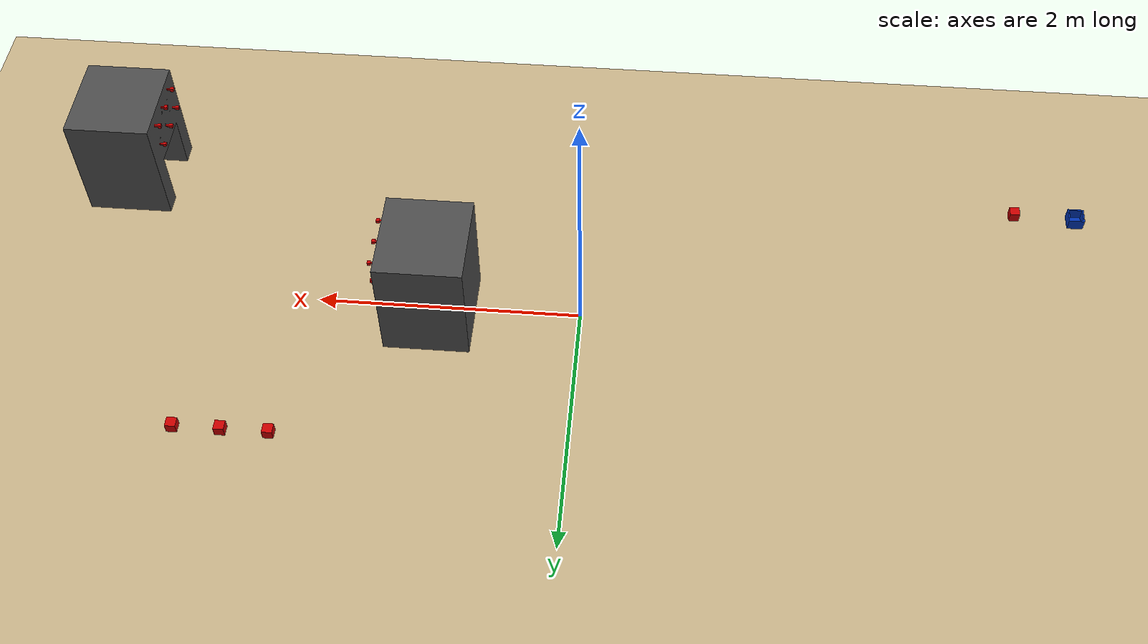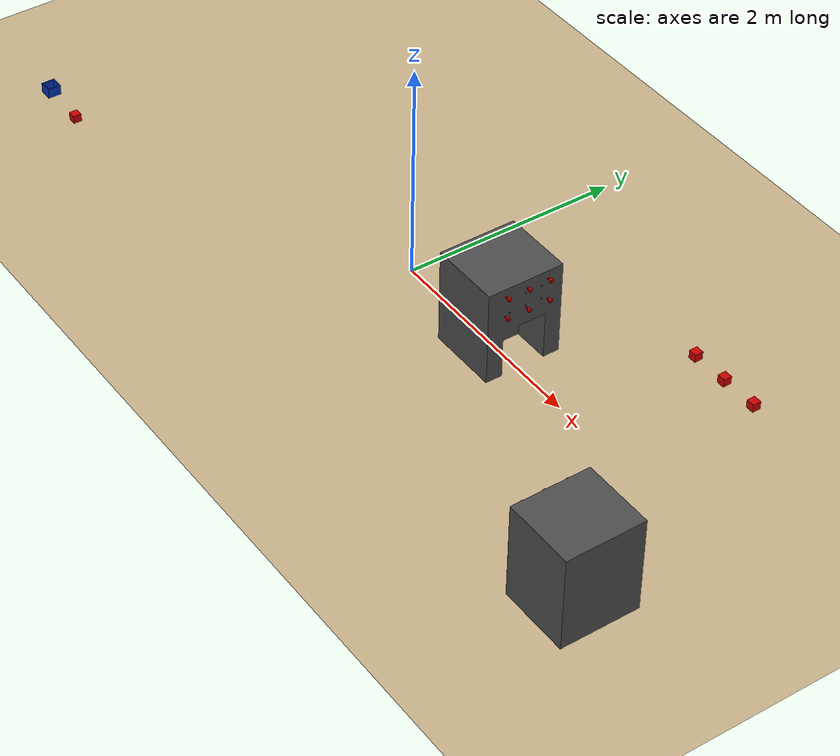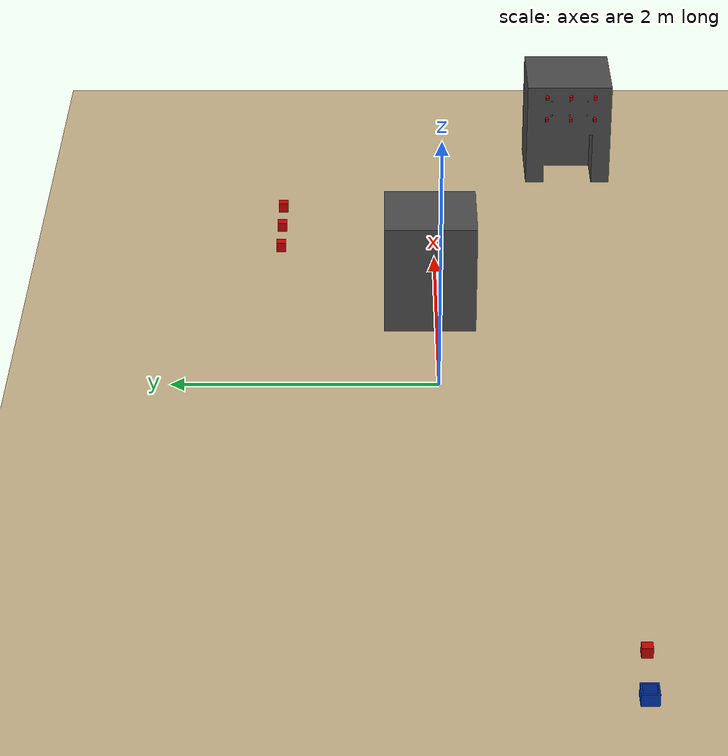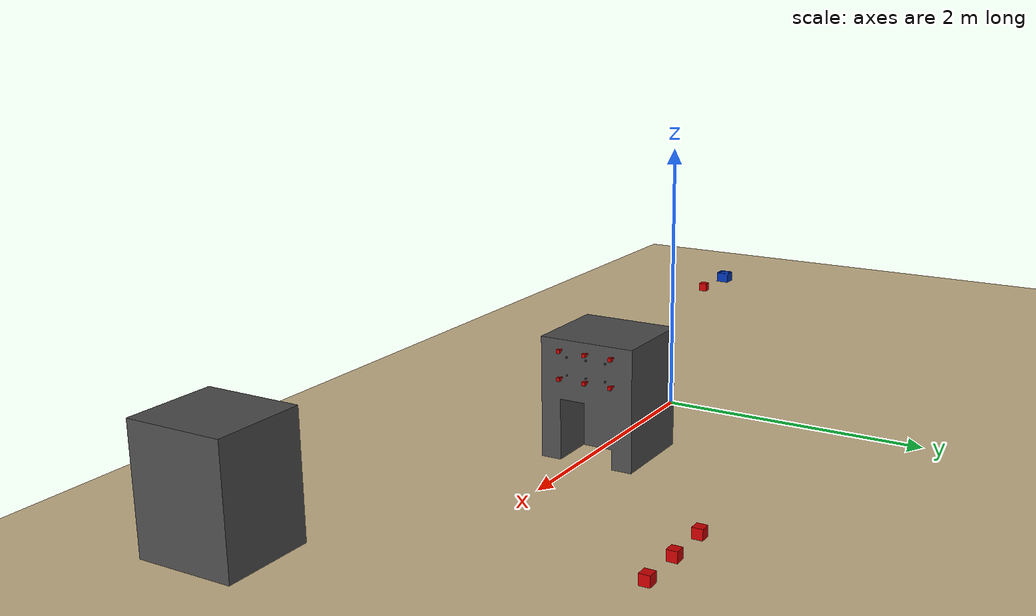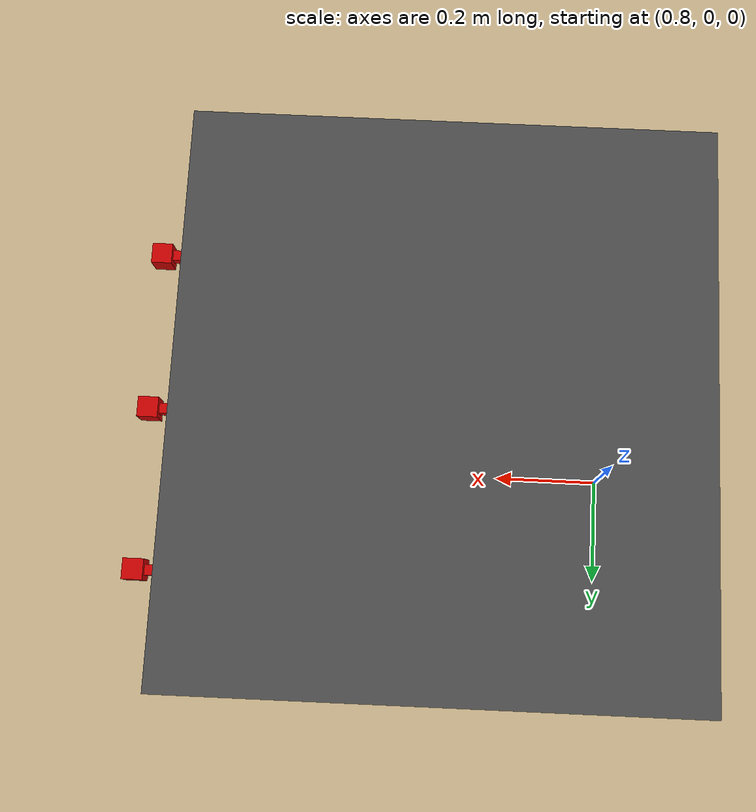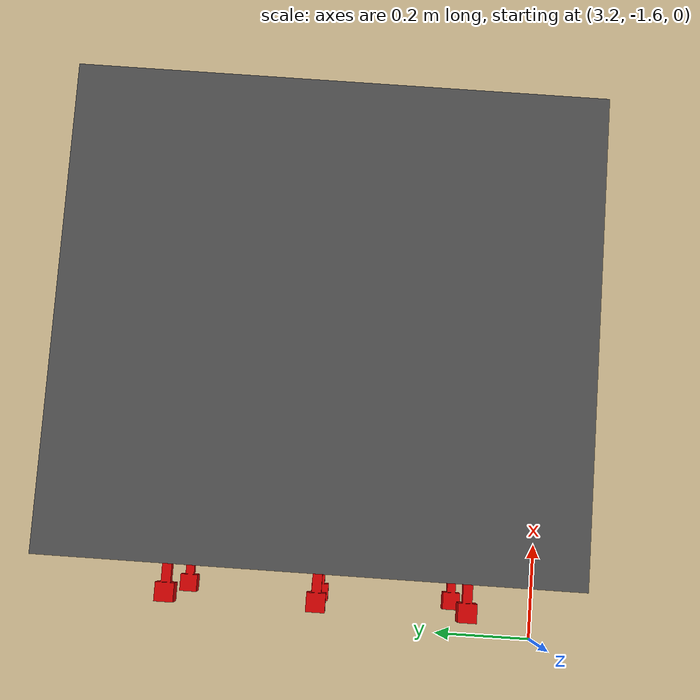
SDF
<sdf version='1.9'>
  <world name='empty'>
    <physics name='1ms' type='ignored'>
      <max_step_size>0.001</max_step_size>
      <real_time_factor>1</real_time_factor>
      <real_time_update_rate>1000</real_time_update_rate>
    </physics>

    <plugin name='gz::sim::systems::Physics' filename='ignition-gazebo-physics-system'/>
    <plugin name='gz::sim::systems::UserCommands' filename='ignition-gazebo-user-commands-system'/>
    <plugin name='gz::sim::systems::SceneBroadcaster' filename='ignition-gazebo-scene-broadcaster-system'/>
    <plugin name='gz::sim::systems::Contact' filename='ignition-gazebo-contact-system'/>
    <plugin name='gz::sim::systems::Sensors' filename='ignition-gazebo-sensors-system'>
      <render_engine>ogre2</render_engine>
    </plugin>

    <gravity>0 0 -9.8</gravity>
    <scene>
      <ambient>0.45 0.45 0.45 1</ambient>
      <background>0.85 0.88 0.92 1</background>
      <shadows>true</shadows>
    </scene>

    <model name='ground_plane'>
      <static>true</static>
      <link name='link'>
        <collision name='collision'>
          <geometry>
            <plane>
              <normal>0 0 1</normal>
              <size>100 100</size>
            </plane>
          </geometry>
          <surface>
            <friction>
              <ode>
                <mu>1.0</mu>
                <mu2>1.0</mu2>
              </ode>
            </friction>
          </surface>
        </collision>
        <visual name='visual'>
          <geometry>
            <plane>
              <normal>0 0 1</normal>
              <size>100 100</size>
            </plane>
          </geometry>
          <material>
            <ambient>0.74 0.66 0.50 1</ambient>
            <diffuse>0.78 0.70 0.54 1</diffuse>
            <specular>0.05 0.05 0.05 1</specular>
          </material>
        </visual>
      </link>
    </model>

    <light name='sun' type='directional'>
      <pose>0 0 20 0 0 0</pose>
      <cast_shadows>true</cast_shadows>
      <intensity>1.0</intensity>
      <direction>-0.5 0.1 -0.9</direction>
      <diffuse>0.9 0.9 0.9 1</diffuse>
      <specular>0.2 0.2 0.2 1</specular>
      <attenuation>
        <range>1000</range>
        <linear>0.01</linear>
        <constant>0.9</constant>
        <quadratic>0.001</quadratic>
      </attenuation>
    </light>

    <!-- Rover course checkpoints -->

    <!-- Checkpoint 1: credit tap pickup -->
    <include>
      <uri>model://Panel</uri>
      <name>ButtonPanel</name>
      <pose>0.80 -0.30 0.0 0 0 0</pose>
    </include>

    <!-- Checkpoint 0: start area credit cube -->
    <include>
      <uri>model://CreditCube</uri>
      <name>CreditCube</name>
      <pose>-3.40 -1.30 0.0 0 0 0</pose>
    </include>

    <!-- Start/finish marker: transport box must return here -->
    <include>
      <uri>model://TransportBox</uri>
      <name>TransportBox</name>
      <pose>-3.90 -1.30 0.0 0 0 0</pose>
    </include>

    <!-- Checkpoint 2: dispensed item collection zone -->
    <include>
      <uri>model://CreditCube</uri>
      <name>DispenseItem_1</name>
      <pose>2.10 1.20 0.0 0 0 0</pose>
    </include>

    <include>
      <uri>model://CreditCube</uri>
      <name>DispenseItem_2</name>
      <pose>2.45 1.20 0.0 0 0 0</pose>
    </include>

    <include>
      <uri>model://CreditCube</uri>
      <name>DispenseItem_3</name>
      <pose>2.80 1.20 0.0 0 0 0</pose>
    </include>

    <!-- Checkpoint 3: service panel at end of course -->
    <include>
      <uri>model://Panel</uri>
      <name>ServicePanel</name>
      <pose>4.00 -0.80 0.0 0 0 3.14159</pose>
    </include>

    <!-- Flat-plane course: no terrain obstacles -->
  </world>
</sdf>

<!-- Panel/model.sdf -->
<sdf version="1.9">
  <model name="panel">
    <static>true</static>
    <link name="link">
      <collision name="collision">
        <pose>0 0 0.0 0 0 0</pose>
        <geometry>
          <mesh>
            <uri>meshes/ButtonPanel.stl</uri>
          </mesh>
        </geometry>
      </collision>
      <visual name="visual">
        <geometry>
          <mesh>
            <uri>meshes/ButtonPanel.stl</uri>
          </mesh>
        </geometry>
        <material>
          <ambient>0.2 0.2 0.2 1</ambient>
          <diffuse>0.3 0.3 0.3 1</diffuse>
          <specular>0.5 0.5 0.5 1</specular>
        </material>
      </visual>
    </link>
    <!-- 3x2 grid of buttons on the front face -->
    <!-- Stems point into panel along -X, caps face outward -->
    <!-- Row 1 (bottom) -->
    <include>
      <uri>model://Button</uri>
      <name>Button_1</name>
      <pose>0.7 0.15 0.59 0 -1.5708 0</pose>
    </include>
    <include>
      <uri>model://Button</uri>
      <name>Button_2</name>
      <pose>0.7 0.35 0.59 0 -1.5708 0</pose>
    </include>
    <include>
      <uri>model://Button</uri>
      <name>Button_3</name>
      <pose>0.7 0.55 0.59 0 -1.5708 0</pose>
    </include>
    <!-- Row 2 (top) -->
    <include>
      <uri>model://Button</uri>
      <name>Button_4</name>
      <pose>0.7 0.15 0.79 0 -1.5708 0</pose>
    </include>
    <include>
      <uri>model://Button</uri>
      <name>Button_5</name>
      <pose>0.7 0.35 0.79 0 -1.5708 0</pose>
    </include>
    <include>
      <uri>model://Button</uri>
      <name>Button_6</name>
      <pose>0.7 0.55 0.79 0 -1.5708 0</pose>
    </include>
  </model>
</sdf>

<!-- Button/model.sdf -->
<sdf version="1.9">
  <model name="button">
    <static>true</static>
    <link name="link">
      <collision name="button_collision">
        <pose>0 0 0.0 0 0 0</pose>
        <geometry>
          <mesh>
            <uri>meshes/1x1Button.stl</uri>
          </mesh>
        </geometry>
      </collision>
      <visual name="button_visual">
        <geometry>
          <mesh>
            <uri>meshes/1x1Button.stl</uri>
          </mesh>
        </geometry>
        <material>
          <ambient>0.5 0.0 0.0 1</ambient>
          <diffuse>0.8 0.0 0.0 1</diffuse>
          <specular>0.9 0.4 0.4 1</specular>
        </material>
      </visual>
      <sensor name="button_contact" type="contact">
        <contact>
          <collision>button_collision</collision>
        </contact>
        <always_on>true</always_on>
        <update_rate>30</update_rate>
      </sensor>
    </link>
    <plugin filename="ignition-gazebo-contact-system" name="gz::sim::systems::Contact"/>
  </model>
</sdf>

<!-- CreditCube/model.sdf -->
<sdf version="1.9">
  <model name="credit_cube">
    <static>false</static>
    <link name="link">
      <inertial>
        <mass>0.0625</mass>
        <pose>0.01905 0.01905 0.01905 0 0 0</pose>
        <inertia>
          <ixx>3.025e-05</ixx>
          <ixy>0</ixy>
          <ixz>0</ixz>
          <iyy>3.025e-05</iyy>
          <iyz>0</iyz>
          <izz>3.025e-05</izz>
        </inertia>
      </inertial>
      <collision name="collision">
        <pose>0 0 0.0 0 0 0</pose>
        <geometry>
          <mesh>
            <uri>meshes/CreditCube.stl</uri>
          </mesh>
        </geometry>
      </collision>
      <visual name="visual">
        <geometry>
          <mesh>
            <uri>meshes/CreditCube.stl</uri>
          </mesh>
        </geometry>
        <material>
          <ambient>0.5 0.0 0.0 1</ambient>
          <diffuse>0.8 0.0 0.0 1</diffuse>
          <specular>0.9 0.4 0.4 1</specular>
        </material>
      </visual>
      <sensor name="credit_cube_contact" type="contact">
        <contact>
          <collision>collision</collision>
        </contact>
        <always_on>true</always_on>
        <update_rate>30</update_rate>
      </sensor>
    </link>
    <plugin filename="ignition-gazebo-contact-system" name="gz::sim::systems::Contact"/>
  </model>
</sdf>

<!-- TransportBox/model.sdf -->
<sdf version="1.9">
  <model name="transport_box">
    <static>false</static>
    <link name="link">
      <inertial>
        <mass>0.4</mass>
        <pose>0.06096 0.06096 0.04572 0 0 0</pose>
        <inertia>
          <ixx>7.68e-04</ixx>
          <ixy>0</ixy>
          <ixz>0</ixz>
          <iyy>7.68e-04</iyy>
          <iyz>0</iyz>
          <izz>9.6e-04</izz>
        </inertia>
      </inertial>
      <collision name="collision">
        <pose>0 0 0.0 0 0 0</pose>
        <geometry>
          <mesh>
            <uri>meshes/TransportBox.stl</uri>
            <scale>0.4 0.4 0.4</scale>
          </mesh>
        </geometry>
      </collision>
      <visual name="visual">
        <geometry>
          <mesh>
            <uri>meshes/TransportBox.stl</uri>
            <scale>0.4 0.4 0.4</scale>
          </mesh>
        </geometry>
        <material>
          <ambient>0.0 0.1 0.4 1</ambient>
          <diffuse>0.0 0.2 0.7 1</diffuse>
          <specular>0.3 0.4 0.9 1</specular>
        </material>
      </visual>
      <sensor name="transport_box_contact" type="contact">
        <contact>
          <collision>collision</collision>
        </contact>
        <always_on>true</always_on>
        <update_rate>30</update_rate>
      </sensor>
    </link>
    <plugin filename="ignition-gazebo-contact-system" name="gz::sim::systems::Contact"/>
  </model>
</sdf>
